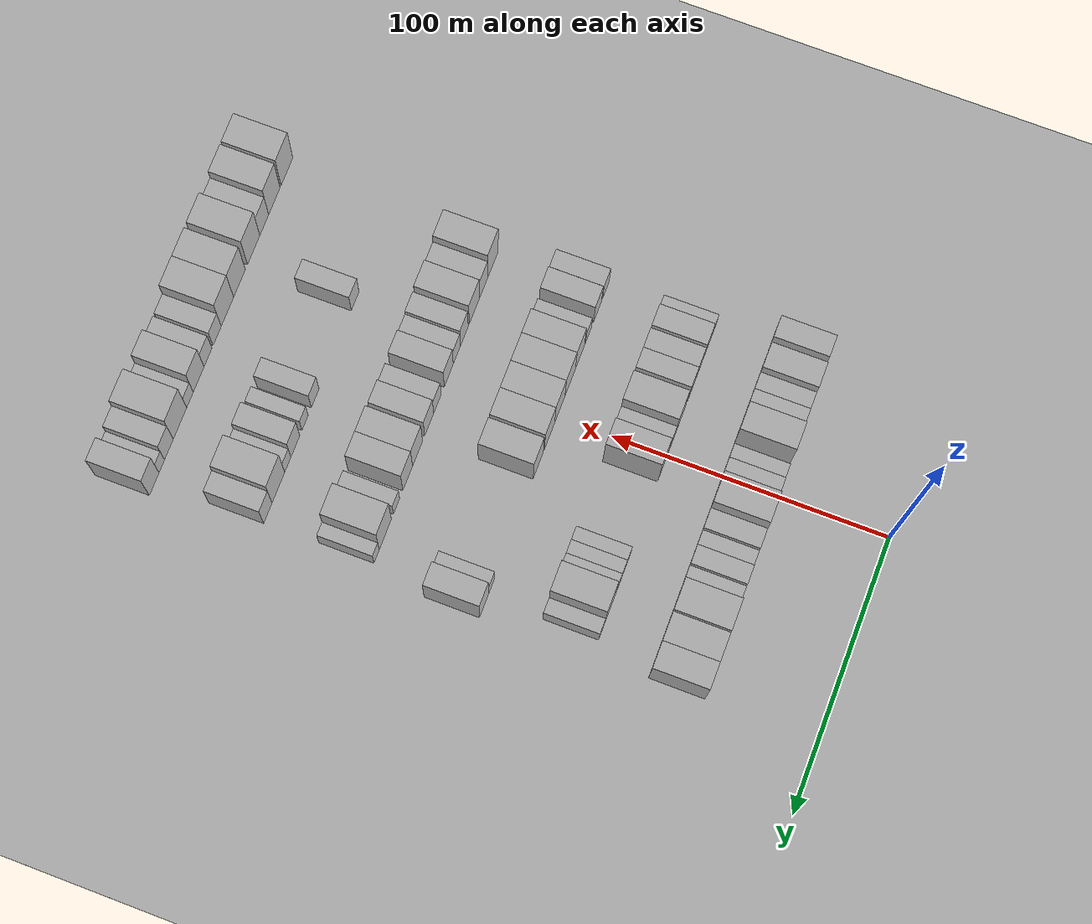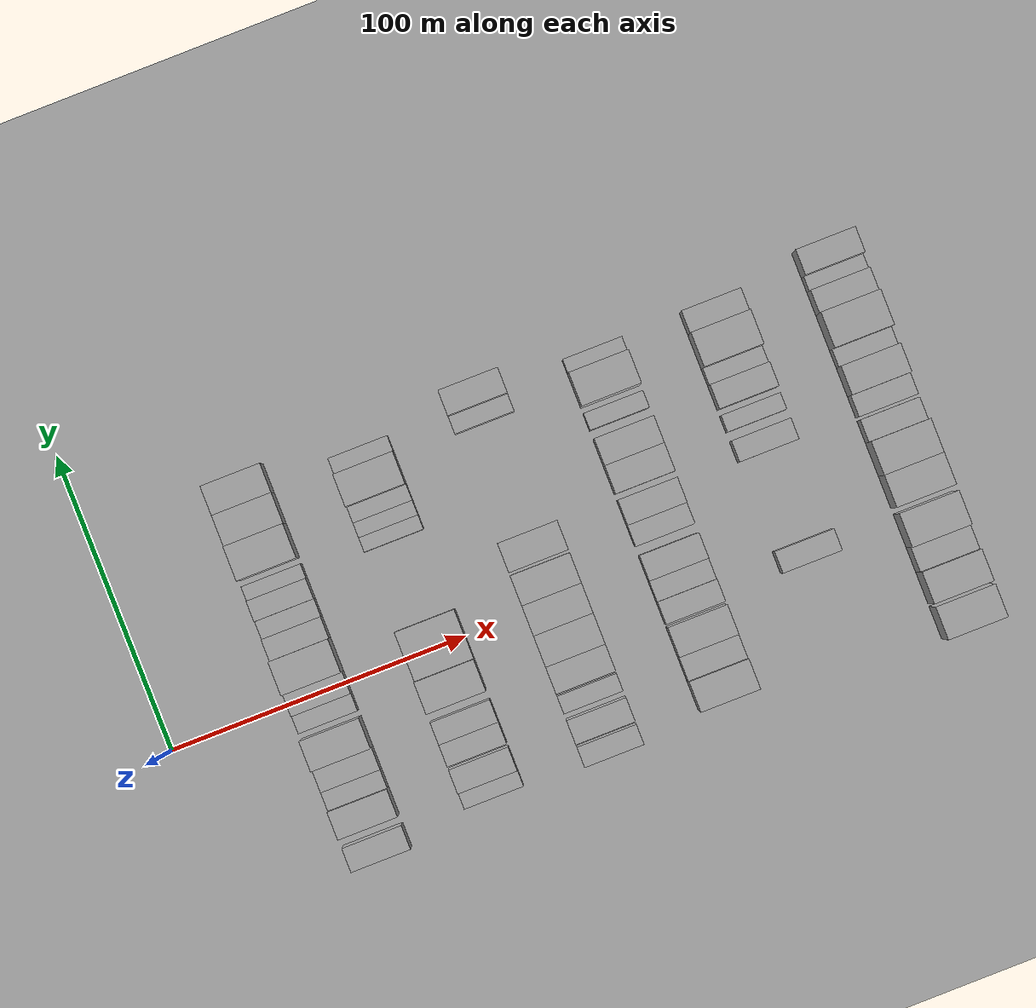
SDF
<sdf version="1.6">
 <world name="default">
  <include><name>ground_plane_1</name><uri>model://HANNAS_ground_plane</uri></include>
  <include>
   <name>ground_plane_2</name>
   <uri>model://HANNAS_ground_plane</uri>
   <pose>100 0 0  0 0 0</pose>
  </include>
  <model name="building_64">
   <static>1</static>
   <pose>50.0000 -51.5352 0 0.000000 0.000000 0.000000</pose>
   <link name="link">
    <pose>0 0 9.00 0 0 0</pose>
    <collision name="collision"><geometry><box><size>20.0000 8.0473 18.0000</size></box></geometry></collision>
    <visual name="visual">
     <cast_shadows>0</cast_shadows>
     <geometry><box><size>20.0000 8.0473 18.0000</size></box></geometry>
     <material>
      <script>
       <uri>model://HANNAS_wall/materials/scripts</uri>
       <uri>model://HANNAS_wall/materials/textures</uri>
       <name>vrc/HANNAS_wall</name>
      </script>
     </material>
    </visual>
   </link>
  </model>
  <model name="building_65">
   <static>1</static>
   <pose>50.0000 -39.8252 0 0.000000 0.000000 0.000000</pose>
   <link name="link">
    <pose>0 0 10.50 0 0 0</pose>
    <collision name="collision"><geometry><box><size>20.0000 9.3727 21.0000</size></box></geometry></collision>
    <visual name="visual">
     <cast_shadows>0</cast_shadows>
     <geometry><box><size>20.0000 9.3727 21.0000</size></box></geometry>
     <material>
      <script>
       <uri>model://HANNAS_wall/materials/scripts</uri>
       <uri>model://HANNAS_wall/materials/textures</uri>
       <name>vrc/HANNAS_wall</name>
      </script>
     </material>
    </visual>
   </link>
  </model>
  <model name="building_66">
   <static>1</static>
   <pose>50.0000 -32.0606 0 0.000000 0.000000 0.000000</pose>
   <link name="link">
    <pose>0 0 7.50 0 0 0</pose>
    <collision name="collision"><geometry><box><size>20.0000 6.1567 15.0000</size></box></geometry></collision>
    <visual name="visual">
     <cast_shadows>0</cast_shadows>
     <geometry><box><size>20.0000 6.1567 15.0000</size></box></geometry>
     <material>
      <script>
       <uri>model://HANNAS_wall/materials/scripts</uri>
       <uri>model://HANNAS_wall/materials/textures</uri>
       <name>vrc/HANNAS_wall</name>
      </script>
     </material>
    </visual>
   </link>
  </model>
  <model name="building_67">
   <static>1</static>
   <pose>50.0000 -25.2557 0 0.000000 0.000000 0.000000</pose>
   <link name="link">
    <pose>0 0 7.50 0 0 0</pose>
    <collision name="collision"><geometry><box><size>20.0000 7.4532 15.0000</size></box></geometry></collision>
    <visual name="visual">
     <cast_shadows>0</cast_shadows>
     <geometry><box><size>20.0000 7.4532 15.0000</size></box></geometry>
     <material>
      <script>
       <uri>model://HANNAS_wall/materials/scripts</uri>
       <uri>model://HANNAS_wall/materials/textures</uri>
       <name>vrc/HANNAS_wall</name>
      </script>
     </material>
    </visual>
   </link>
  </model>
  <model name="building_68">
   <static>1</static>
   <pose>50.0000 -16.4131 0 0.000000 0.000000 0.000000</pose>
   <link name="link">
    <pose>0 0 12.00 0 0 0</pose>
    <collision name="collision"><geometry><box><size>20.0000 10.2320 24.0000</size></box></geometry></collision>
    <visual name="visual">
     <cast_shadows>0</cast_shadows>
     <geometry><box><size>20.0000 10.2320 24.0000</size></box></geometry>
     <material>
      <script>
       <uri>model://HANNAS_wall/materials/scripts</uri>
       <uri>model://HANNAS_wall/materials/textures</uri>
       <name>vrc/HANNAS_wall</name>
      </script>
     </material>
    </visual>
   </link>
  </model>
  <model name="building_69">
   <static>1</static>
   <pose>50.0000 -6.3607 0 0.000000 0.000000 0.000000</pose>
   <link name="link">
    <pose>0 0 6.00 0 0 0</pose>
    <collision name="collision"><geometry><box><size>20.0000 5.8727 12.0000</size></box></geometry></collision>
    <visual name="visual">
     <cast_shadows>0</cast_shadows>
     <geometry><box><size>20.0000 5.8727 12.0000</size></box></geometry>
     <material>
      <script>
       <uri>model://HANNAS_wall/materials/scripts</uri>
       <uri>model://HANNAS_wall/materials/textures</uri>
       <name>vrc/HANNAS_wall</name>
      </script>
     </material>
    </visual>
   </link>
  </model>
  <model name="building_70">
   <static>1</static>
   <pose>50.0000 0.2485 0 0.000000 0.000000 0.000000</pose>
   <link name="link">
    <pose>0 0 7.50 0 0 0</pose>
    <collision name="collision"><geometry><box><size>20.0000 7.3458 15.0000</size></box></geometry></collision>
    <visual name="visual">
     <cast_shadows>0</cast_shadows>
     <geometry><box><size>20.0000 7.3458 15.0000</size></box></geometry>
     <material>
      <script>
       <uri>model://HANNAS_wall/materials/scripts</uri>
       <uri>model://HANNAS_wall/materials/textures</uri>
       <name>vrc/HANNAS_wall</name>
      </script>
     </material>
    </visual>
   </link>
  </model>
  <model name="building_71">
   <static>1</static>
   <pose>50.0000 9.5668 0 0.000000 0.000000 0.000000</pose>
   <link name="link">
    <pose>0 0 12.00 0 0 0</pose>
    <collision name="collision"><geometry><box><size>20.0000 11.2907 24.0000</size></box></geometry></collision>
    <visual name="visual">
     <cast_shadows>0</cast_shadows>
     <geometry><box><size>20.0000 11.2907 24.0000</size></box></geometry>
     <material>
      <script>
       <uri>model://HANNAS_wall/materials/scripts</uri>
       <uri>model://HANNAS_wall/materials/textures</uri>
       <name>vrc/HANNAS_wall</name>
      </script>
     </material>
    </visual>
   </link>
  </model>
  <model name="building_72">
   <static>1</static>
   <pose>50.0000 18.8635 0 0.000000 0.000000 0.000000</pose>
   <link name="link">
    <pose>0 0 7.50 0 0 0</pose>
    <collision name="collision"><geometry><box><size>20.0000 7.3028 15.0000</size></box></geometry></collision>
    <visual name="visual">
     <cast_shadows>0</cast_shadows>
     <geometry><box><size>20.0000 7.3028 15.0000</size></box></geometry>
     <material>
      <script>
       <uri>model://HANNAS_wall/materials/scripts</uri>
       <uri>model://HANNAS_wall/materials/textures</uri>
       <name>vrc/HANNAS_wall</name>
      </script>
     </material>
    </visual>
   </link>
  </model>
  <model name="building_73">
   <static>1</static>
   <pose>50.0000 25.5119 0 0.000000 0.000000 0.000000</pose>
   <link name="link">
    <pose>0 0 6.00 0 0 0</pose>
    <collision name="collision"><geometry><box><size>20.0000 5.9941 12.0000</size></box></geometry></collision>
    <visual name="visual">
     <cast_shadows>0</cast_shadows>
     <geometry><box><size>20.0000 5.9941 12.0000</size></box></geometry>
     <material>
      <script>
       <uri>model://HANNAS_wall/materials/scripts</uri>
       <uri>model://HANNAS_wall/materials/textures</uri>
       <name>vrc/HANNAS_wall</name>
      </script>
     </material>
    </visual>
   </link>
  </model>
  <model name="building_74">
   <static>1</static>
   <pose>50.0000 31.9724 0 0.000000 0.000000 0.000000</pose>
   <link name="link">
    <pose>0 0 7.50 0 0 0</pose>
    <collision name="collision"><geometry><box><size>20.0000 6.9268 15.0000</size></box></geometry></collision>
    <visual name="visual">
     <cast_shadows>0</cast_shadows>
     <geometry><box><size>20.0000 6.9268 15.0000</size></box></geometry>
     <material>
      <script>
       <uri>model://HANNAS_wall/materials/scripts</uri>
       <uri>model://HANNAS_wall/materials/textures</uri>
       <name>vrc/HANNAS_wall</name>
      </script>
     </material>
    </visual>
   </link>
  </model>
  <model name="building_75">
   <static>1</static>
   <pose>50.0000 37.8529 0 0.000000 0.000000 0.000000</pose>
   <link name="link">
    <pose>0 0 6.00 0 0 0</pose>
    <collision name="collision"><geometry><box><size>20.0000 4.8342 12.0000</size></box></geometry></collision>
    <visual name="visual">
     <cast_shadows>0</cast_shadows>
     <geometry><box><size>20.0000 4.8342 12.0000</size></box></geometry>
     <material>
      <script>
       <uri>model://HANNAS_wall/materials/scripts</uri>
       <uri>model://HANNAS_wall/materials/textures</uri>
       <name>vrc/HANNAS_wall</name>
      </script>
     </material>
    </visual>
   </link>
  </model>
  <model name="building_76">
   <static>1</static>
   <pose>50.0000 48.0387 0 0.000000 0.000000 0.000000</pose>
   <link name="link">
    <pose>0 0 12.00 0 0 0</pose>
    <collision name="collision"><geometry><box><size>20.0000 11.5376 24.0000</size></box></geometry></collision>
    <visual name="visual">
     <cast_shadows>0</cast_shadows>
     <geometry><box><size>20.0000 11.5376 24.0000</size></box></geometry>
     <material>
      <script>
       <uri>model://HANNAS_wall/materials/scripts</uri>
       <uri>model://HANNAS_wall/materials/textures</uri>
       <name>vrc/HANNAS_wall</name>
      </script>
     </material>
    </visual>
   </link>
  </model>
  <model name="building_77">
   <static>1</static>
   <pose>50.0000 59.0153 0 0.000000 0.000000 0.000000</pose>
   <link name="link">
    <pose>0 0 10.50 0 0 0</pose>
    <collision name="collision"><geometry><box><size>20.0000 10.4155 21.0000</size></box></geometry></collision>
    <visual name="visual">
     <cast_shadows>0</cast_shadows>
     <geometry><box><size>20.0000 10.4155 21.0000</size></box></geometry>
     <material>
      <script>
       <uri>model://HANNAS_wall/materials/scripts</uri>
       <uri>model://HANNAS_wall/materials/textures</uri>
       <name>vrc/HANNAS_wall</name>
      </script>
     </material>
    </visual>
   </link>
  </model>
  <model name="building_78">
   <static>1</static>
   <pose>50.0000 69.1358 0 0.000000 0.000000 0.000000</pose>
   <link name="link">
    <pose>0 0 10.50 0 0 0</pose>
    <collision name="collision"><geometry><box><size>20.0000 9.8256 21.0000</size></box></geometry></collision>
    <visual name="visual">
     <cast_shadows>0</cast_shadows>
     <geometry><box><size>20.0000 9.8256 21.0000</size></box></geometry>
     <material>
      <script>
       <uri>model://HANNAS_wall/materials/scripts</uri>
       <uri>model://HANNAS_wall/materials/textures</uri>
       <name>vrc/HANNAS_wall</name>
      </script>
     </material>
    </visual>
   </link>
  </model>
  <model name="building_206">
   <static>1</static>
   <pose>90.0000 -47.5455 0 0.000000 0.000000 0.000000</pose>
   <link name="link">
    <pose>0 0 6.00 0 0 0</pose>
    <collision name="collision"><geometry><box><size>20.0000 5.4786 12.0000</size></box></geometry></collision>
    <visual name="visual">
     <cast_shadows>0</cast_shadows>
     <geometry><box><size>20.0000 5.4786 12.0000</size></box></geometry>
     <material>
      <script>
       <uri>model://HANNAS_wall/materials/scripts</uri>
       <uri>model://HANNAS_wall/materials/textures</uri>
       <name>vrc/HANNAS_wall</name>
      </script>
     </material>
    </visual>
   </link>
  </model>
  <model name="building_207">
   <static>1</static>
   <pose>90.0000 -40.7762 0 0.000000 0.000000 0.000000</pose>
   <link name="link">
    <pose>0 0 9.00 0 0 0</pose>
    <collision name="collision"><geometry><box><size>20.0000 8.0601 18.0000</size></box></geometry></collision>
    <visual name="visual">
     <cast_shadows>0</cast_shadows>
     <geometry><box><size>20.0000 8.0601 18.0000</size></box></geometry>
     <material>
      <script>
       <uri>model://HANNAS_wall/materials/scripts</uri>
       <uri>model://HANNAS_wall/materials/textures</uri>
       <name>vrc/HANNAS_wall</name>
      </script>
     </material>
    </visual>
   </link>
  </model>
  <model name="building_208">
   <static>1</static>
   <pose>90.0000 -32.0818 0 0.000000 0.000000 0.000000</pose>
   <link name="link">
    <pose>0 0 9.00 0 0 0</pose>
    <collision name="collision"><geometry><box><size>20.0000 7.3288 18.0000</size></box></geometry></collision>
    <visual name="visual">
     <cast_shadows>0</cast_shadows>
     <geometry><box><size>20.0000 7.3288 18.0000</size></box></geometry>
     <material>
      <script>
       <uri>model://HANNAS_wall/materials/scripts</uri>
       <uri>model://HANNAS_wall/materials/textures</uri>
       <name>vrc/HANNAS_wall</name>
      </script>
     </material>
    </visual>
   </link>
  </model>
  <model name="building_209">
   <static>1</static>
   <pose>90.0000 -24.6507 0 0.000000 0.000000 0.000000</pose>
   <link name="link">
    <pose>0 0 9.00 0 0 0</pose>
    <collision name="collision"><geometry><box><size>20.0000 7.5333 18.0000</size></box></geometry></collision>
    <visual name="visual">
     <cast_shadows>0</cast_shadows>
     <geometry><box><size>20.0000 7.5333 18.0000</size></box></geometry>
     <material>
      <script>
       <uri>model://HANNAS_wall/materials/scripts</uri>
       <uri>model://HANNAS_wall/materials/textures</uri>
       <name>vrc/HANNAS_wall</name>
      </script>
     </material>
    </visual>
   </link>
  </model>
  <model name="building_210">
   <static>1</static>
   <pose>90.0000 -12.5366 0 0.000000 0.000000 0.000000</pose>
   <link name="link">
    <pose>0 0 12.00 0 0 0</pose>
    <collision name="collision"><geometry><box><size>20.0000 10.6948 24.0000</size></box></geometry></collision>
    <visual name="visual">
     <cast_shadows>0</cast_shadows>
     <geometry><box><size>20.0000 10.6948 24.0000</size></box></geometry>
     <material>
      <script>
       <uri>model://HANNAS_wall/materials/scripts</uri>
       <uri>model://HANNAS_wall/materials/textures</uri>
       <name>vrc/HANNAS_wall</name>
      </script>
     </material>
    </visual>
   </link>
  </model>
  <model name="building_211">
   <static>1</static>
   <pose>90.0000 -3.7306 0 0.000000 0.000000 0.000000</pose>
   <link name="link">
    <pose>0 0 7.50 0 0 0</pose>
    <collision name="collision"><geometry><box><size>20.0000 6.9171 15.0000</size></box></geometry></collision>
    <visual name="visual">
     <cast_shadows>0</cast_shadows>
     <geometry><box><size>20.0000 6.9171 15.0000</size></box></geometry>
     <material>
      <script>
       <uri>model://HANNAS_wall/materials/scripts</uri>
       <uri>model://HANNAS_wall/materials/textures</uri>
       <name>vrc/HANNAS_wall</name>
      </script>
     </material>
    </visual>
   </link>
  </model>
  <model name="building_212">
   <static>1</static>
   <pose>90.0000 4.6208 0 0.000000 0.000000 0.000000</pose>
   <link name="link">
    <pose>0 0 12.00 0 0 0</pose>
    <collision name="collision"><geometry><box><size>20.0000 9.7858 24.0000</size></box></geometry></collision>
    <visual name="visual">
     <cast_shadows>0</cast_shadows>
     <geometry><box><size>20.0000 9.7858 24.0000</size></box></geometry>
     <material>
      <script>
       <uri>model://HANNAS_wall/materials/scripts</uri>
       <uri>model://HANNAS_wall/materials/textures</uri>
       <name>vrc/HANNAS_wall</name>
      </script>
     </material>
    </visual>
   </link>
  </model>
  <model name="building_213">
   <static>1</static>
   <pose>90.0000 38.7837 0 0.000000 0.000000 0.000000</pose>
   <link name="link">
    <pose>0 0 6.00 0 0 0</pose>
    <collision name="collision"><geometry><box><size>20.0000 4.8466 12.0000</size></box></geometry></collision>
    <visual name="visual">
     <cast_shadows>0</cast_shadows>
     <geometry><box><size>20.0000 4.8466 12.0000</size></box></geometry>
     <material>
      <script>
       <uri>model://HANNAS_wall/materials/scripts</uri>
       <uri>model://HANNAS_wall/materials/textures</uri>
       <name>vrc/HANNAS_wall</name>
      </script>
     </material>
    </visual>
   </link>
  </model>
  <model name="building_214">
   <static>1</static>
   <pose>90.0000 43.6691 0 0.000000 0.000000 0.000000</pose>
   <link name="link">
    <pose>0 0 6.00 0 0 0</pose>
    <collision name="collision"><geometry><box><size>20.0000 4.9241 12.0000</size></box></geometry></collision>
    <visual name="visual">
     <cast_shadows>0</cast_shadows>
     <geometry><box><size>20.0000 4.9241 12.0000</size></box></geometry>
     <material>
      <script>
       <uri>model://HANNAS_wall/materials/scripts</uri>
       <uri>model://HANNAS_wall/materials/textures</uri>
       <name>vrc/HANNAS_wall</name>
      </script>
     </material>
    </visual>
   </link>
  </model>
  <model name="building_215">
   <static>1</static>
   <pose>90.0000 48.8211 0 0.000000 0.000000 0.000000</pose>
   <link name="link">
    <pose>0 0 6.00 0 0 0</pose>
    <collision name="collision"><geometry><box><size>20.0000 5.3800 12.0000</size></box></geometry></collision>
    <visual name="visual">
     <cast_shadows>0</cast_shadows>
     <geometry><box><size>20.0000 5.3800 12.0000</size></box></geometry>
     <material>
      <script>
       <uri>model://HANNAS_wall/materials/scripts</uri>
       <uri>model://HANNAS_wall/materials/textures</uri>
       <name>vrc/HANNAS_wall</name>
      </script>
     </material>
    </visual>
   </link>
  </model>
  <model name="building_216">
   <static>1</static>
   <pose>90.0000 56.9424 0 0.000000 0.000000 0.000000</pose>
   <link name="link">
    <pose>0 0 12.00 0 0 0</pose>
    <collision name="collision"><geometry><box><size>20.0000 10.8625 24.0000</size></box></geometry></collision>
    <visual name="visual">
     <cast_shadows>0</cast_shadows>
     <geometry><box><size>20.0000 10.8625 24.0000</size></box></geometry>
     <material>
      <script>
       <uri>model://HANNAS_wall/materials/scripts</uri>
       <uri>model://HANNAS_wall/materials/textures</uri>
       <name>vrc/HANNAS_wall</name>
      </script>
     </material>
    </visual>
   </link>
  </model>
  <model name="building_217">
   <static>1</static>
   <pose>90.0000 65.1539 0 0.000000 0.000000 0.000000</pose>
   <link name="link">
    <pose>0 0 6.00 0 0 0</pose>
    <collision name="collision"><geometry><box><size>20.0000 5.5605 12.0000</size></box></geometry></collision>
    <visual name="visual">
     <cast_shadows>0</cast_shadows>
     <geometry><box><size>20.0000 5.5605 12.0000</size></box></geometry>
     <material>
      <script>
       <uri>model://HANNAS_wall/materials/scripts</uri>
       <uri>model://HANNAS_wall/materials/textures</uri>
       <name>vrc/HANNAS_wall</name>
      </script>
     </material>
    </visual>
   </link>
  </model>
  <model name="building_338">
   <static>1</static>
   <pose>130.0000 -48.2579 0 0.000000 0.000000 0.000000</pose>
   <link name="link">
    <pose>0 0 7.50 0 0 0</pose>
    <collision name="collision"><geometry><box><size>20.0000 6.8046 15.0000</size></box></geometry></collision>
    <visual name="visual">
     <cast_shadows>0</cast_shadows>
     <geometry><box><size>20.0000 6.8046 15.0000</size></box></geometry>
     <material>
      <script>
       <uri>model://HANNAS_wall/materials/scripts</uri>
       <uri>model://HANNAS_wall/materials/textures</uri>
       <name>vrc/HANNAS_wall</name>
      </script>
     </material>
    </visual>
   </link>
  </model>
  <model name="building_339">
   <static>1</static>
   <pose>130.0000 -39.8081 0 0.000000 0.000000 0.000000</pose>
   <link name="link">
    <pose>0 0 9.00 0 0 0</pose>
    <collision name="collision"><geometry><box><size>20.0000 8.0949 18.0000</size></box></geometry></collision>
    <visual name="visual">
     <cast_shadows>0</cast_shadows>
     <geometry><box><size>20.0000 8.0949 18.0000</size></box></geometry>
     <material>
      <script>
       <uri>model://HANNAS_wall/materials/scripts</uri>
       <uri>model://HANNAS_wall/materials/textures</uri>
       <name>vrc/HANNAS_wall</name>
      </script>
     </material>
    </visual>
   </link>
  </model>
  <model name="building_340">
   <static>1</static>
   <pose>130.0000 -30.7865 0 0.000000 0.000000 0.000000</pose>
   <link name="link">
    <pose>0 0 6.00 0 0 0</pose>
    <collision name="collision"><geometry><box><size>20.0000 5.9484 12.0000</size></box></geometry></collision>
    <visual name="visual">
     <cast_shadows>0</cast_shadows>
     <geometry><box><size>20.0000 5.9484 12.0000</size></box></geometry>
     <material>
      <script>
       <uri>model://HANNAS_wall/materials/scripts</uri>
       <uri>model://HANNAS_wall/materials/textures</uri>
       <name>vrc/HANNAS_wall</name>
      </script>
     </material>
    </visual>
   </link>
  </model>
  <model name="building_341">
   <static>1</static>
   <pose>130.0000 -22.2965 0 0.000000 0.000000 0.000000</pose>
   <link name="link">
    <pose>0 0 10.50 0 0 0</pose>
    <collision name="collision"><geometry><box><size>20.0000 9.0317 21.0000</size></box></geometry></collision>
    <visual name="visual">
     <cast_shadows>0</cast_shadows>
     <geometry><box><size>20.0000 9.0317 21.0000</size></box></geometry>
     <material>
      <script>
       <uri>model://HANNAS_wall/materials/scripts</uri>
       <uri>model://HANNAS_wall/materials/textures</uri>
       <name>vrc/HANNAS_wall</name>
      </script>
     </material>
    </visual>
   </link>
  </model>
  <model name="building_342">
   <static>1</static>
   <pose>130.0000 -12.5580 0 0.000000 0.000000 0.000000</pose>
   <link name="link">
    <pose>0 0 10.50 0 0 0</pose>
    <collision name="collision"><geometry><box><size>20.0000 10.4451 21.0000</size></box></geometry></collision>
    <visual name="visual">
     <cast_shadows>0</cast_shadows>
     <geometry><box><size>20.0000 10.4451 21.0000</size></box></geometry>
     <material>
      <script>
       <uri>model://HANNAS_wall/materials/scripts</uri>
       <uri>model://HANNAS_wall/materials/textures</uri>
       <name>vrc/HANNAS_wall</name>
      </script>
     </material>
    </visual>
   </link>
  </model>
  <model name="building_343">
   <static>1</static>
   <pose>130.0000 -2.2955 0 0.000000 0.000000 0.000000</pose>
   <link name="link">
    <pose>0 0 10.50 0 0 0</pose>
    <collision name="collision"><geometry><box><size>20.0000 10.0799 21.0000</size></box></geometry></collision>
    <visual name="visual">
     <cast_shadows>0</cast_shadows>
     <geometry><box><size>20.0000 10.0799 21.0000</size></box></geometry>
     <material>
      <script>
       <uri>model://HANNAS_wall/materials/scripts</uri>
       <uri>model://HANNAS_wall/materials/textures</uri>
       <name>vrc/HANNAS_wall</name>
      </script>
     </material>
    </visual>
   </link>
  </model>
  <model name="building_344">
   <static>1</static>
   <pose>130.0000 7.8081 0 0.000000 0.000000 0.000000</pose>
   <link name="link">
    <pose>0 0 10.50 0 0 0</pose>
    <collision name="collision"><geometry><box><size>20.0000 10.1273 21.0000</size></box></geometry></collision>
    <visual name="visual">
     <cast_shadows>0</cast_shadows>
     <geometry><box><size>20.0000 10.1273 21.0000</size></box></geometry>
     <material>
      <script>
       <uri>model://HANNAS_wall/materials/scripts</uri>
       <uri>model://HANNAS_wall/materials/textures</uri>
       <name>vrc/HANNAS_wall</name>
      </script>
     </material>
    </visual>
   </link>
  </model>
  <model name="building_345">
   <static>1</static>
   <pose>130.0000 18.8027 0 0.000000 0.000000 0.000000</pose>
   <link name="link">
    <pose>0 0 10.50 0 0 0</pose>
    <collision name="collision"><geometry><box><size>20.0000 9.8619 21.0000</size></box></geometry></collision>
    <visual name="visual">
     <cast_shadows>0</cast_shadows>
     <geometry><box><size>20.0000 9.8619 21.0000</size></box></geometry>
     <material>
      <script>
       <uri>model://HANNAS_wall/materials/scripts</uri>
       <uri>model://HANNAS_wall/materials/textures</uri>
       <name>vrc/HANNAS_wall</name>
      </script>
     </material>
    </visual>
   </link>
  </model>
  <model name="building_346">
   <static>1</static>
   <pose>130.0000 63.5233 0 0.000000 0.000000 0.000000</pose>
   <link name="link">
    <pose>0 0 6.00 0 0 0</pose>
    <collision name="collision"><geometry><box><size>20.0000 5.8598 12.0000</size></box></geometry></collision>
    <visual name="visual">
     <cast_shadows>0</cast_shadows>
     <geometry><box><size>20.0000 5.8598 12.0000</size></box></geometry>
     <material>
      <script>
       <uri>model://HANNAS_wall/materials/scripts</uri>
       <uri>model://HANNAS_wall/materials/textures</uri>
       <name>vrc/HANNAS_wall</name>
      </script>
     </material>
    </visual>
   </link>
  </model>
  <model name="building_347">
   <static>1</static>
   <pose>130.0000 70.7193 0 0.000000 0.000000 0.000000</pose>
   <link name="link">
    <pose>0 0 10.50 0 0 0</pose>
    <collision name="collision"><geometry><box><size>20.0000 8.5322 21.0000</size></box></geometry></collision>
    <visual name="visual">
     <cast_shadows>0</cast_shadows>
     <geometry><box><size>20.0000 8.5322 21.0000</size></box></geometry>
     <material>
      <script>
       <uri>model://HANNAS_wall/materials/scripts</uri>
       <uri>model://HANNAS_wall/materials/textures</uri>
       <name>vrc/HANNAS_wall</name>
      </script>
     </material>
    </visual>
   </link>
  </model>
  <model name="building_460">
   <static>1</static>
   <pose>170.0000 -43.2208 0 0.000000 0.000000 0.000000</pose>
   <link name="link">
    <pose>0 0 12.00 0 0 0</pose>
    <collision name="collision"><geometry><box><size>20.0000 10.2138 24.0000</size></box></geometry></collision>
    <visual name="visual">
     <cast_shadows>0</cast_shadows>
     <geometry><box><size>20.0000 10.2138 24.0000</size></box></geometry>
     <material>
      <script>
       <uri>model://HANNAS_wall/materials/scripts</uri>
       <uri>model://HANNAS_wall/materials/textures</uri>
       <name>vrc/HANNAS_wall</name>
      </script>
     </material>
    </visual>
   </link>
  </model>
  <model name="building_461">
   <static>1</static>
   <pose>170.0000 -34.1043 0 0.000000 0.000000 0.000000</pose>
   <link name="link">
    <pose>0 0 9.00 0 0 0</pose>
    <collision name="collision"><geometry><box><size>20.0000 8.0191 18.0000</size></box></geometry></collision>
    <visual name="visual">
     <cast_shadows>0</cast_shadows>
     <geometry><box><size>20.0000 8.0191 18.0000</size></box></geometry>
     <material>
      <script>
       <uri>model://HANNAS_wall/materials/scripts</uri>
       <uri>model://HANNAS_wall/materials/textures</uri>
       <name>vrc/HANNAS_wall</name>
      </script>
     </material>
    </visual>
   </link>
  </model>
  <model name="building_462">
   <static>1</static>
   <pose>170.0000 -25.0766 0 0.000000 0.000000 0.000000</pose>
   <link name="link">
    <pose>0 0 10.50 0 0 0</pose>
    <collision name="collision"><geometry><box><size>20.0000 10.0364 21.0000</size></box></geometry></collision>
    <visual name="visual">
     <cast_shadows>0</cast_shadows>
     <geometry><box><size>20.0000 10.0364 21.0000</size></box></geometry>
     <material>
      <script>
       <uri>model://HANNAS_wall/materials/scripts</uri>
       <uri>model://HANNAS_wall/materials/textures</uri>
       <name>vrc/HANNAS_wall</name>
      </script>
     </material>
    </visual>
   </link>
  </model>
  <model name="building_463">
   <static>1</static>
   <pose>170.0000 -15.2944 0 0.000000 0.000000 0.000000</pose>
   <link name="link">
    <pose>0 0 9.00 0 0 0</pose>
    <collision name="collision"><geometry><box><size>20.0000 7.5280 18.0000</size></box></geometry></collision>
    <visual name="visual">
     <cast_shadows>0</cast_shadows>
     <geometry><box><size>20.0000 7.5280 18.0000</size></box></geometry>
     <material>
      <script>
       <uri>model://HANNAS_wall/materials/scripts</uri>
       <uri>model://HANNAS_wall/materials/textures</uri>
       <name>vrc/HANNAS_wall</name>
      </script>
     </material>
    </visual>
   </link>
  </model>
  <model name="building_464">
   <static>1</static>
   <pose>170.0000 -8.0362 0 0.000000 0.000000 0.000000</pose>
   <link name="link">
    <pose>0 0 7.50 0 0 0</pose>
    <collision name="collision"><geometry><box><size>20.0000 6.9884 15.0000</size></box></geometry></collision>
    <visual name="visual">
     <cast_shadows>0</cast_shadows>
     <geometry><box><size>20.0000 6.9884 15.0000</size></box></geometry>
     <material>
      <script>
       <uri>model://HANNAS_wall/materials/scripts</uri>
       <uri>model://HANNAS_wall/materials/textures</uri>
       <name>vrc/HANNAS_wall</name>
      </script>
     </material>
    </visual>
   </link>
  </model>
  <model name="building_465">
   <static>1</static>
   <pose>170.0000 -0.2376 0 0.000000 0.000000 0.000000</pose>
   <link name="link">
    <pose>0 0 9.00 0 0 0</pose>
    <collision name="collision"><geometry><box><size>20.0000 8.6088 18.0000</size></box></geometry></collision>
    <visual name="visual">
     <cast_shadows>0</cast_shadows>
     <geometry><box><size>20.0000 8.6088 18.0000</size></box></geometry>
     <material>
      <script>
       <uri>model://HANNAS_wall/materials/scripts</uri>
       <uri>model://HANNAS_wall/materials/textures</uri>
       <name>vrc/HANNAS_wall</name>
      </script>
     </material>
    </visual>
   </link>
  </model>
  <model name="building_466">
   <static>1</static>
   <pose>170.0000 10.6305 0 0.000000 0.000000 0.000000</pose>
   <link name="link">
    <pose>0 0 7.50 0 0 0</pose>
    <collision name="collision"><geometry><box><size>20.0000 7.1273 15.0000</size></box></geometry></collision>
    <visual name="visual">
     <cast_shadows>0</cast_shadows>
     <geometry><box><size>20.0000 7.1273 15.0000</size></box></geometry>
     <material>
      <script>
       <uri>model://HANNAS_wall/materials/scripts</uri>
       <uri>model://HANNAS_wall/materials/textures</uri>
       <name>vrc/HANNAS_wall</name>
      </script>
     </material>
    </visual>
   </link>
  </model>
  <model name="building_467">
   <static>1</static>
   <pose>170.0000 18.4475 0 0.000000 0.000000 0.000000</pose>
   <link name="link">
    <pose>0 0 9.00 0 0 0</pose>
    <collision name="collision"><geometry><box><size>20.0000 8.5068 18.0000</size></box></geometry></collision>
    <visual name="visual">
     <cast_shadows>0</cast_shadows>
     <geometry><box><size>20.0000 8.5068 18.0000</size></box></geometry>
     <material>
      <script>
       <uri>model://HANNAS_wall/materials/scripts</uri>
       <uri>model://HANNAS_wall/materials/textures</uri>
       <name>vrc/HANNAS_wall</name>
      </script>
     </material>
    </visual>
   </link>
  </model>
  <model name="building_468">
   <static>1</static>
   <pose>170.0000 29.4354 0 0.000000 0.000000 0.000000</pose>
   <link name="link">
    <pose>0 0 10.50 0 0 0</pose>
    <collision name="collision"><geometry><box><size>20.0000 9.4689 21.0000</size></box></geometry></collision>
    <visual name="visual">
     <cast_shadows>0</cast_shadows>
     <geometry><box><size>20.0000 9.4689 21.0000</size></box></geometry>
     <material>
      <script>
       <uri>model://HANNAS_wall/materials/scripts</uri>
       <uri>model://HANNAS_wall/materials/textures</uri>
       <name>vrc/HANNAS_wall</name>
      </script>
     </material>
    </visual>
   </link>
  </model>
  <model name="building_469">
   <static>1</static>
   <pose>170.0000 38.7164 0 0.000000 0.000000 0.000000</pose>
   <link name="link">
    <pose>0 0 10.50 0 0 0</pose>
    <collision name="collision"><geometry><box><size>20.0000 9.0931 21.0000</size></box></geometry></collision>
    <visual name="visual">
     <cast_shadows>0</cast_shadows>
     <geometry><box><size>20.0000 9.0931 21.0000</size></box></geometry>
     <material>
      <script>
       <uri>model://HANNAS_wall/materials/scripts</uri>
       <uri>model://HANNAS_wall/materials/textures</uri>
       <name>vrc/HANNAS_wall</name>
      </script>
     </material>
    </visual>
   </link>
  </model>
  <model name="building_470">
   <static>1</static>
   <pose>170.0000 49.1263 0 0.000000 0.000000 0.000000</pose>
   <link name="link">
    <pose>0 0 6.00 0 0 0</pose>
    <collision name="collision"><geometry><box><size>20.0000 5.7266 12.0000</size></box></geometry></collision>
    <visual name="visual">
     <cast_shadows>0</cast_shadows>
     <geometry><box><size>20.0000 5.7266 12.0000</size></box></geometry>
     <material>
      <script>
       <uri>model://HANNAS_wall/materials/scripts</uri>
       <uri>model://HANNAS_wall/materials/textures</uri>
       <name>vrc/HANNAS_wall</name>
      </script>
     </material>
    </visual>
   </link>
  </model>
  <model name="building_471">
   <static>1</static>
   <pose>170.0000 59.6328 0 0.000000 0.000000 0.000000</pose>
   <link name="link">
    <pose>0 0 12.00 0 0 0</pose>
    <collision name="collision"><geometry><box><size>20.0000 11.2864 24.0000</size></box></geometry></collision>
    <visual name="visual">
     <cast_shadows>0</cast_shadows>
     <geometry><box><size>20.0000 11.2864 24.0000</size></box></geometry>
     <material>
      <script>
       <uri>model://HANNAS_wall/materials/scripts</uri>
       <uri>model://HANNAS_wall/materials/textures</uri>
       <name>vrc/HANNAS_wall</name>
      </script>
     </material>
    </visual>
   </link>
  </model>
  <model name="building_472">
   <static>1</static>
   <pose>170.0000 67.7247 0 0.000000 0.000000 0.000000</pose>
   <link name="link">
    <pose>0 0 6.00 0 0 0</pose>
    <collision name="collision"><geometry><box><size>20.0000 4.8975 12.0000</size></box></geometry></collision>
    <visual name="visual">
     <cast_shadows>0</cast_shadows>
     <geometry><box><size>20.0000 4.8975 12.0000</size></box></geometry>
     <material>
      <script>
       <uri>model://HANNAS_wall/materials/scripts</uri>
       <uri>model://HANNAS_wall/materials/textures</uri>
       <name>vrc/HANNAS_wall</name>
      </script>
     </material>
    </visual>
   </link>
  </model>
  <model name="building_588">
   <static>1</static>
   <pose>210.0000 -13.8401 0 0.000000 0.000000 0.000000</pose>
   <link name="link">
    <pose>0 0 7.50 0 0 0</pose>
    <collision name="collision"><geometry><box><size>20.0000 7.2948 15.0000</size></box></geometry></collision>
    <visual name="visual">
     <cast_shadows>0</cast_shadows>
     <geometry><box><size>20.0000 7.2948 15.0000</size></box></geometry>
     <material>
      <script>
       <uri>model://HANNAS_wall/materials/scripts</uri>
       <uri>model://HANNAS_wall/materials/textures</uri>
       <name>vrc/HANNAS_wall</name>
      </script>
     </material>
    </visual>
   </link>
  </model>
  <model name="building_589">
   <static>1</static>
   <pose>210.0000 23.4979 0 0.000000 0.000000 0.000000</pose>
   <link name="link">
    <pose>0 0 7.50 0 0 0</pose>
    <collision name="collision"><geometry><box><size>20.0000 7.1270 15.0000</size></box></geometry></collision>
    <visual name="visual">
     <cast_shadows>0</cast_shadows>
     <geometry><box><size>20.0000 7.1270 15.0000</size></box></geometry>
     <material>
      <script>
       <uri>model://HANNAS_wall/materials/scripts</uri>
       <uri>model://HANNAS_wall/materials/textures</uri>
       <name>vrc/HANNAS_wall</name>
      </script>
     </material>
    </visual>
   </link>
  </model>
  <model name="building_590">
   <static>1</static>
   <pose>210.0000 32.8825 0 0.000000 0.000000 0.000000</pose>
   <link name="link">
    <pose>0 0 6.00 0 0 0</pose>
    <collision name="collision"><geometry><box><size>20.0000 5.6422 12.0000</size></box></geometry></collision>
    <visual name="visual">
     <cast_shadows>0</cast_shadows>
     <geometry><box><size>20.0000 5.6422 12.0000</size></box></geometry>
     <material>
      <script>
       <uri>model://HANNAS_wall/materials/scripts</uri>
       <uri>model://HANNAS_wall/materials/textures</uri>
       <name>vrc/HANNAS_wall</name>
      </script>
     </material>
    </visual>
   </link>
  </model>
  <model name="building_591">
   <static>1</static>
   <pose>210.0000 41.7825 0 0.000000 0.000000 0.000000</pose>
   <link name="link">
    <pose>0 0 9.00 0 0 0</pose>
    <collision name="collision"><geometry><box><size>20.0000 8.1578 18.0000</size></box></geometry></collision>
    <visual name="visual">
     <cast_shadows>0</cast_shadows>
     <geometry><box><size>20.0000 8.1578 18.0000</size></box></geometry>
     <material>
      <script>
       <uri>model://HANNAS_wall/materials/scripts</uri>
       <uri>model://HANNAS_wall/materials/textures</uri>
       <name>vrc/HANNAS_wall</name>
      </script>
     </material>
    </visual>
   </link>
  </model>
  <model name="building_592">
   <static>1</static>
   <pose>210.0000 48.7031 0 0.000000 0.000000 0.000000</pose>
   <link name="link">
    <pose>0 0 6.00 0 0 0</pose>
    <collision name="collision"><geometry><box><size>20.0000 5.6835 12.0000</size></box></geometry></collision>
    <visual name="visual">
     <cast_shadows>0</cast_shadows>
     <geometry><box><size>20.0000 5.6835 12.0000</size></box></geometry>
     <material>
      <script>
       <uri>model://HANNAS_wall/materials/scripts</uri>
       <uri>model://HANNAS_wall/materials/textures</uri>
       <name>vrc/HANNAS_wall</name>
      </script>
     </material>
    </visual>
   </link>
  </model>
  <model name="building_593">
   <static>1</static>
   <pose>210.0000 57.3056 0 0.000000 0.000000 0.000000</pose>
   <link name="link">
    <pose>0 0 12.00 0 0 0</pose>
    <collision name="collision"><geometry><box><size>20.0000 11.5214 24.0000</size></box></geometry></collision>
    <visual name="visual">
     <cast_shadows>0</cast_shadows>
     <geometry><box><size>20.0000 11.5214 24.0000</size></box></geometry>
     <material>
      <script>
       <uri>model://HANNAS_wall/materials/scripts</uri>
       <uri>model://HANNAS_wall/materials/textures</uri>
       <name>vrc/HANNAS_wall</name>
      </script>
     </material>
    </visual>
   </link>
  </model>
  <model name="building_594">
   <static>1</static>
   <pose>210.0000 66.8557 0 0.000000 0.000000 0.000000</pose>
   <link name="link">
    <pose>0 0 9.00 0 0 0</pose>
    <collision name="collision"><geometry><box><size>20.0000 7.5788 18.0000</size></box></geometry></collision>
    <visual name="visual">
     <cast_shadows>0</cast_shadows>
     <geometry><box><size>20.0000 7.5788 18.0000</size></box></geometry>
     <material>
      <script>
       <uri>model://HANNAS_wall/materials/scripts</uri>
       <uri>model://HANNAS_wall/materials/textures</uri>
       <name>vrc/HANNAS_wall</name>
      </script>
     </material>
    </visual>
   </link>
  </model>
  <model name="building_716">
   <static>1</static>
   <pose>250.0000 -49.7887 0 0.000000 0.000000 0.000000</pose>
   <link name="link">
    <pose>0 0 12.00 0 0 0</pose>
    <collision name="collision"><geometry><box><size>20.0000 11.0376 24.0000</size></box></geometry></collision>
    <visual name="visual">
     <cast_shadows>0</cast_shadows>
     <geometry><box><size>20.0000 11.0376 24.0000</size></box></geometry>
     <material>
      <script>
       <uri>model://HANNAS_wall/materials/scripts</uri>
       <uri>model://HANNAS_wall/materials/textures</uri>
       <name>vrc/HANNAS_wall</name>
      </script>
     </material>
    </visual>
   </link>
  </model>
  <model name="building_717">
   <static>1</static>
   <pose>250.0000 -37.9350 0 0.000000 0.000000 0.000000</pose>
   <link name="link">
    <pose>0 0 12.00 0 0 0</pose>
    <collision name="collision"><geometry><box><size>20.0000 10.6699 24.0000</size></box></geometry></collision>
    <visual name="visual">
     <cast_shadows>0</cast_shadows>
     <geometry><box><size>20.0000 10.6699 24.0000</size></box></geometry>
     <material>
      <script>
       <uri>model://HANNAS_wall/materials/scripts</uri>
       <uri>model://HANNAS_wall/materials/textures</uri>
       <name>vrc/HANNAS_wall</name>
      </script>
     </material>
    </visual>
   </link>
  </model>
  <model name="building_718">
   <static>1</static>
   <pose>250.0000 -28.5049 0 0.000000 0.000000 0.000000</pose>
   <link name="link">
    <pose>0 0 9.00 0 0 0</pose>
    <collision name="collision"><geometry><box><size>20.0000 8.1903 18.0000</size></box></geometry></collision>
    <visual name="visual">
     <cast_shadows>0</cast_shadows>
     <geometry><box><size>20.0000 8.1903 18.0000</size></box></geometry>
     <material>
      <script>
       <uri>model://HANNAS_wall/materials/scripts</uri>
       <uri>model://HANNAS_wall/materials/textures</uri>
       <name>vrc/HANNAS_wall</name>
      </script>
     </material>
    </visual>
   </link>
  </model>
  <model name="building_719">
   <static>1</static>
   <pose>250.0000 -18.7185 0 0.000000 0.000000 0.000000</pose>
   <link name="link">
    <pose>0 0 12.00 0 0 0</pose>
    <collision name="collision"><geometry><box><size>20.0000 11.3825 24.0000</size></box></geometry></collision>
    <visual name="visual">
     <cast_shadows>0</cast_shadows>
     <geometry><box><size>20.0000 11.3825 24.0000</size></box></geometry>
     <material>
      <script>
       <uri>model://HANNAS_wall/materials/scripts</uri>
       <uri>model://HANNAS_wall/materials/textures</uri>
       <name>vrc/HANNAS_wall</name>
      </script>
     </material>
    </visual>
   </link>
  </model>
  <model name="building_720">
   <static>1</static>
   <pose>250.0000 -5.6304 0 0.000000 0.000000 0.000000</pose>
   <link name="link">
    <pose>0 0 12.00 0 0 0</pose>
    <collision name="collision"><geometry><box><size>20.0000 10.7937 24.0000</size></box></geometry></collision>
    <visual name="visual">
     <cast_shadows>0</cast_shadows>
     <geometry><box><size>20.0000 10.7937 24.0000</size></box></geometry>
     <material>
      <script>
       <uri>model://HANNAS_wall/materials/scripts</uri>
       <uri>model://HANNAS_wall/materials/textures</uri>
       <name>vrc/HANNAS_wall</name>
      </script>
     </material>
    </visual>
   </link>
  </model>
  <model name="building_721">
   <static>1</static>
   <pose>250.0000 5.4126 0 0.000000 0.000000 0.000000</pose>
   <link name="link">
    <pose>0 0 12.00 0 0 0</pose>
    <collision name="collision"><geometry><box><size>20.0000 11.2924 24.0000</size></box></geometry></collision>
    <visual name="visual">
     <cast_shadows>0</cast_shadows>
     <geometry><box><size>20.0000 11.2924 24.0000</size></box></geometry>
     <material>
      <script>
       <uri>model://HANNAS_wall/materials/scripts</uri>
       <uri>model://HANNAS_wall/materials/textures</uri>
       <name>vrc/HANNAS_wall</name>
      </script>
     </material>
    </visual>
   </link>
  </model>
  <model name="building_722">
   <static>1</static>
   <pose>250.0000 14.7964 0 0.000000 0.000000 0.000000</pose>
   <link name="link">
    <pose>0 0 7.50 0 0 0</pose>
    <collision name="collision"><geometry><box><size>20.0000 7.4752 15.0000</size></box></geometry></collision>
    <visual name="visual">
     <cast_shadows>0</cast_shadows>
     <geometry><box><size>20.0000 7.4752 15.0000</size></box></geometry>
     <material>
      <script>
       <uri>model://HANNAS_wall/materials/scripts</uri>
       <uri>model://HANNAS_wall/materials/textures</uri>
       <name>vrc/HANNAS_wall</name>
      </script>
     </material>
    </visual>
   </link>
  </model>
  <model name="building_723">
   <static>1</static>
   <pose>250.0000 23.1126 0 0.000000 0.000000 0.000000</pose>
   <link name="link">
    <pose>0 0 7.50 0 0 0</pose>
    <collision name="collision"><geometry><box><size>20.0000 7.1572 15.0000</size></box></geometry></collision>
    <visual name="visual">
     <cast_shadows>0</cast_shadows>
     <geometry><box><size>20.0000 7.1572 15.0000</size></box></geometry>
     <material>
      <script>
       <uri>model://HANNAS_wall/materials/scripts</uri>
       <uri>model://HANNAS_wall/materials/textures</uri>
       <name>vrc/HANNAS_wall</name>
      </script>
     </material>
    </visual>
   </link>
  </model>
  <model name="building_724">
   <static>1</static>
   <pose>250.0000 31.5412 0 0.000000 0.000000 0.000000</pose>
   <link name="link">
    <pose>0 0 10.50 0 0 0</pose>
    <collision name="collision"><geometry><box><size>20.0000 9.7001 21.0000</size></box></geometry></collision>
    <visual name="visual">
     <cast_shadows>0</cast_shadows>
     <geometry><box><size>20.0000 9.7001 21.0000</size></box></geometry>
     <material>
      <script>
       <uri>model://HANNAS_wall/materials/scripts</uri>
       <uri>model://HANNAS_wall/materials/textures</uri>
       <name>vrc/HANNAS_wall</name>
      </script>
     </material>
    </visual>
   </link>
  </model>
  <model name="building_725">
   <static>1</static>
   <pose>250.0000 39.3619 0 0.000000 0.000000 0.000000</pose>
   <link name="link">
    <pose>0 0 6.00 0 0 0</pose>
    <collision name="collision"><geometry><box><size>20.0000 5.9411 12.0000</size></box></geometry></collision>
    <visual name="visual">
     <cast_shadows>0</cast_shadows>
     <geometry><box><size>20.0000 5.9411 12.0000</size></box></geometry>
     <material>
      <script>
       <uri>model://HANNAS_wall/materials/scripts</uri>
       <uri>model://HANNAS_wall/materials/textures</uri>
       <name>vrc/HANNAS_wall</name>
      </script>
     </material>
    </visual>
   </link>
  </model>
  <model name="building_726">
   <static>1</static>
   <pose>250.0000 48.3005 0 0.000000 0.000000 0.000000</pose>
   <link name="link">
    <pose>0 0 12.00 0 0 0</pose>
    <collision name="collision"><geometry><box><size>20.0000 11.9362 24.0000</size></box></geometry></collision>
    <visual name="visual">
     <cast_shadows>0</cast_shadows>
     <geometry><box><size>20.0000 11.9362 24.0000</size></box></geometry>
     <material>
      <script>
       <uri>model://HANNAS_wall/materials/scripts</uri>
       <uri>model://HANNAS_wall/materials/textures</uri>
       <name>vrc/HANNAS_wall</name>
      </script>
     </material>
    </visual>
   </link>
  </model>
  <model name="building_727">
   <static>1</static>
   <pose>250.0000 58.1352 0 0.000000 0.000000 0.000000</pose>
   <link name="link">
    <pose>0 0 9.00 0 0 0</pose>
    <collision name="collision"><geometry><box><size>20.0000 7.7330 18.0000</size></box></geometry></collision>
    <visual name="visual">
     <cast_shadows>0</cast_shadows>
     <geometry><box><size>20.0000 7.7330 18.0000</size></box></geometry>
     <material>
      <script>
       <uri>model://HANNAS_wall/materials/scripts</uri>
       <uri>model://HANNAS_wall/materials/textures</uri>
       <name>vrc/HANNAS_wall</name>
      </script>
     </material>
    </visual>
   </link>
  </model>
  <model name="building_728">
   <static>1</static>
   <pose>250.0000 64.4491 0 0.000000 0.000000 0.000000</pose>
   <link name="link">
    <pose>0 0 6.00 0 0 0</pose>
    <collision name="collision"><geometry><box><size>20.0000 4.8948 12.0000</size></box></geometry></collision>
    <visual name="visual">
     <cast_shadows>0</cast_shadows>
     <geometry><box><size>20.0000 4.8948 12.0000</size></box></geometry>
     <material>
      <script>
       <uri>model://HANNAS_wall/materials/scripts</uri>
       <uri>model://HANNAS_wall/materials/textures</uri>
       <name>vrc/HANNAS_wall</name>
      </script>
     </material>
    </visual>
   </link>
  </model>
  <model name="building_729">
   <static>1</static>
   <pose>250.0000 71.1428 0 0.000000 0.000000 0.000000</pose>
   <link name="link">
    <pose>0 0 10.50 0 0 0</pose>
    <collision name="collision"><geometry><box><size>20.0000 8.4927 21.0000</size></box></geometry></collision>
    <visual name="visual">
     <cast_shadows>0</cast_shadows>
     <geometry><box><size>20.0000 8.4927 21.0000</size></box></geometry>
     <material>
      <script>
       <uri>model://HANNAS_wall/materials/scripts</uri>
       <uri>model://HANNAS_wall/materials/textures</uri>
       <name>vrc/HANNAS_wall</name>
      </script>
     </material>
    </visual>
   </link>
  </model>
 </world>
</sdf>
